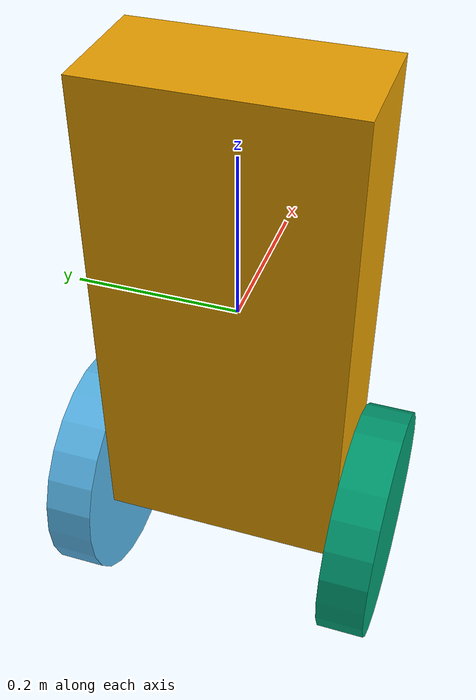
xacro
<robot name="balance_bot" xmlns:xacro="http://www.ros.org/wiki/xacro">
  <xacro:arg name="config_file" default="" />

  <xacro:property name="wheel_radius"   value="0.15"/>
  <xacro:property name="wheel_width"    value="0.06"/>
  <xacro:property name="chassis_height" value="0.6"/>
  <xacro:property name="chassis_width"  value="0.3"/>
  <xacro:property name="chassis_depth"  value="0.15"/>

  <!-- ── Chassis ──────────────────────────────────────────────────────── -->
  <link name="base_link">
    <visual>
      <geometry>
        <box size="${chassis_width} ${chassis_depth} ${chassis_height}"/>
      </geometry>
      <origin xyz="0 0 0" rpy="0 0 1.5708"/>
    </visual>
    <collision>
      <geometry>
        <box size="${chassis_width} ${chassis_depth} ${chassis_height}"/>
      </geometry>
      <origin xyz="0 0 0" rpy="0 0 1.5708"/>
    </collision>
    <inertial>
      <mass value="1.0"/>
      <inertia ixx="0.0319" ixy="0.0" ixz="0.0"
               iyy="0.0375" iyz="0.0"
               izz="0.0094"/>
      <origin xyz="0 0 0" rpy="0 0 0"/>
    </inertial>
  </link>

  <!-- ── Left Wheel ───────────────────────────────────────────────────── -->
  <link name="left_wheel">
    <visual>
      <geometry>
        <cylinder radius="${wheel_radius}" length="${wheel_width}"/>
      </geometry>
      <origin xyz="0 0 0" rpy="1.5708 0 0"/>
    </visual>
    <collision>
      <geometry>
        <cylinder radius="${wheel_radius}" length="${wheel_width}"/>
      </geometry>
      <origin xyz="0 0 0" rpy="1.5708 0 0"/>
    </collision>
    <inertial>
      <mass value="0.2"/>
      <inertia ixx="0.00119" ixy="0.0" ixz="0.0"
               iyy="0.00119" iyz="0.0"
               izz="0.00225"/>
    </inertial>
  </link>

  <joint name="left_wheel_joint" type="continuous">
    <parent link="base_link"/>
    <child link="left_wheel"/>
    <origin xyz="0 ${chassis_width/2 + wheel_width/2} -${chassis_height/2}" rpy="0 0 0"/>
    <axis xyz="0 1 0"/>
    <dynamics damping="0.1" friction="0.05"/>
    <limit effort="10.0" velocity="100.0"/>
  </joint>

  <!-- ── Right Wheel ──────────────────────────────────────────────────── -->
  <link name="right_wheel">
    <visual>
      <geometry>
        <cylinder radius="${wheel_radius}" length="${wheel_width}"/>
      </geometry>
      <origin xyz="0 0 0" rpy="1.5708 0 0"/>
    </visual>
    <collision>
      <geometry>
        <cylinder radius="${wheel_radius}" length="${wheel_width}"/>
      </geometry>
      <origin xyz="0 0 0" rpy="1.5708 0 0"/>
    </collision>
    <inertial>
      <mass value="0.2"/>
      <inertia ixx="0.00119" ixy="0.0" ixz="0.0"
               iyy="0.00119" iyz="0.0"
               izz="0.00225"/>
    </inertial>
  </link>

  <joint name="right_wheel_joint" type="continuous">
    <parent link="base_link"/>
    <child link="right_wheel"/>
    <origin xyz="0 -${chassis_width/2 + wheel_width/2} -${chassis_height/2}" rpy="0 0 0"/>
    <axis xyz="0 1 0"/>
    <dynamics damping="0.1" friction="0.05"/>
    <limit effort="10.0" velocity="100.0"/>
  </joint>

   <!-- ── Wheel surface friction (critical for ground contact) ─────────── -->
   <!-- Without mu/mu2, wheels have no grip and torque reaction launches    -->
   <!-- the chassis.  mu=1.0 is rubber-on-concrete; kp/kd tune contact      -->
   <!-- stiffness so wheels don't sink or bounce on the ground plane.        -->
   <gazebo reference="left_wheel">
     <mu1>1.0</mu1>
     <mu2>1.0</mu2>
     <kp>1e6</kp>
     <kd>10.0</kd>
     <minDepth>0.001</minDepth>
   </gazebo>

   <gazebo reference="right_wheel">
     <mu1>1.0</mu1>
     <mu2>1.0</mu2>
     <kp>1e6</kp>
     <kd>10.0</kd>
     <minDepth>0.001</minDepth>
   </gazebo>

  <!-- ── IMU ──────────────────────────────────────────────────────────── -->
  <link name="imu_link">
    <visual>
      <geometry>
        <box size="0.05 0.05 0.05"/>
      </geometry>
      <origin xyz="0 0 0" rpy="0 0 0"/>
    </visual>
    <collision>
      <geometry>
        <box size="0.05 0.05 0.05"/>
      </geometry>
    </collision>
    <inertial>
      <mass value="0.01"/>
      <inertia ixx="0.0001" ixy="0.0" ixz="0.0"
               iyy="0.0001" iyz="0.0"
               izz="0.0001"/>
    </inertial>
  </link>

  <joint name="imu_joint" type="fixed">
    <parent link="base_link"/>
    <child link="imu_link"/>
    <origin xyz="0 0 -${chassis_height/2}" rpy="0 0 0"/>
  </joint>

  <!-- ── Gazebo IMU plugin ─────────────────────────────────────────────── -->
  <gazebo reference="imu_link">
    <sensor name="imu_sensor" type="imu">
      <always_on>true</always_on>
      <update_rate>100</update_rate>
      <visualize>true</visualize>
      <pose>0 0 0 0 0 0</pose>
      <imu>
        <angular_velocity>
          <x>
            <noise type="gaussian">
              <mean>0.0</mean>
              <stddev>0.0002</stddev>
            </noise>
          </x>
          <y>
            <noise type="gaussian">
              <mean>0.0</mean>
              <stddev>0.0002</stddev>
            </noise>
          </y>
          <z>
            <noise type="gaussian">
              <mean>0.0</mean>
              <stddev>0.0002</stddev>
            </noise>
          </z>
        </angular_velocity>
        <linear_acceleration>
          <x>
            <noise type="gaussian">
              <mean>0.0</mean>
              <stddev>0.017</stddev>
            </noise>
          </x>
          <y>
            <noise type="gaussian">
              <mean>0.0</mean>
              <stddev>0.017</stddev>
            </noise>
          </y>
          <z>
            <noise type="gaussian">
              <mean>0.0</mean>
              <stddev>0.017</stddev>
            </noise>
          </z>
        </linear_acceleration>
      </imu>
      <plugin name="imu_plugin" filename="libgazebo_ros_imu_sensor.so">
        <bodyName>imu_link</bodyName>
        <updateRateHZ>100.0</updateRateHZ>
        <gaussianNoise>0.001</gaussianNoise>
        <xyzOffset>0 0 0</xyzOffset>
        <rpyOffset>0 0 0</rpyOffset>
        <frameName>imu_link</frameName>
        <initialOrientationAsReference>false</initialOrientationAsReference>
        <topicName>/imu_plugin/out</topicName>
      </plugin>
    </sensor>
  </gazebo>

  <!-- ── gazebo_ros2_control plugin ───────────────────────────────────── -->
  <gazebo>
    <plugin name="gazebo_ros2_control" filename="libgazebo_ros2_control.so">
      <robot_param>robot_description</robot_param>
      <robot_param_node>robot_state_publisher</robot_param_node>
      <parameters>$(arg config_file)</parameters>
    </plugin>
  </gazebo>

  <!-- ── ros2_control hardware interface ──────────────────────────────── -->
  <ros2_control name="BalanceBotHardware" type="system">
      <hardware>
        <plugin>gazebo_ros2_control/GazeboSystem</plugin>
      </hardware>
      <joint name="left_wheel_joint">
        <command_interface name="effort">
          <param name="min">-10.0</param>
          <param name="max">10.0</param>
        </command_interface>
        <state_interface name="position"/>
        <state_interface name="velocity"/>
      </joint>
      <joint name="right_wheel_joint">
        <command_interface name="effort">
          <param name="min">-10.0</param>
          <param name="max">10.0</param>
        </command_interface>
        <state_interface name="position"/>
        <state_interface name="velocity"/>
      </joint>
    </ros2_control>

</robot>
